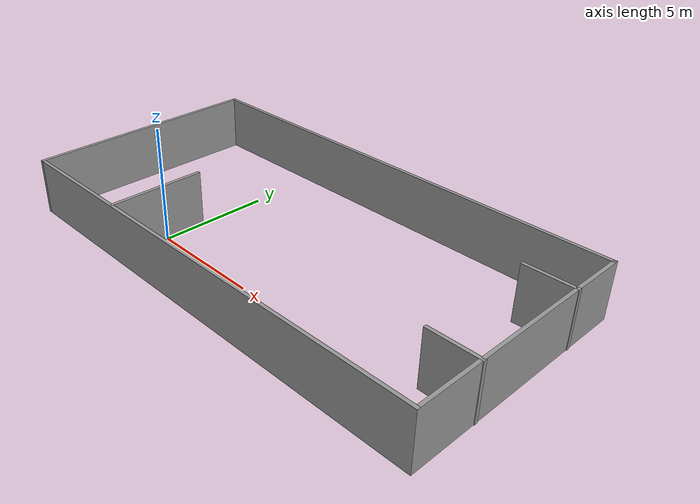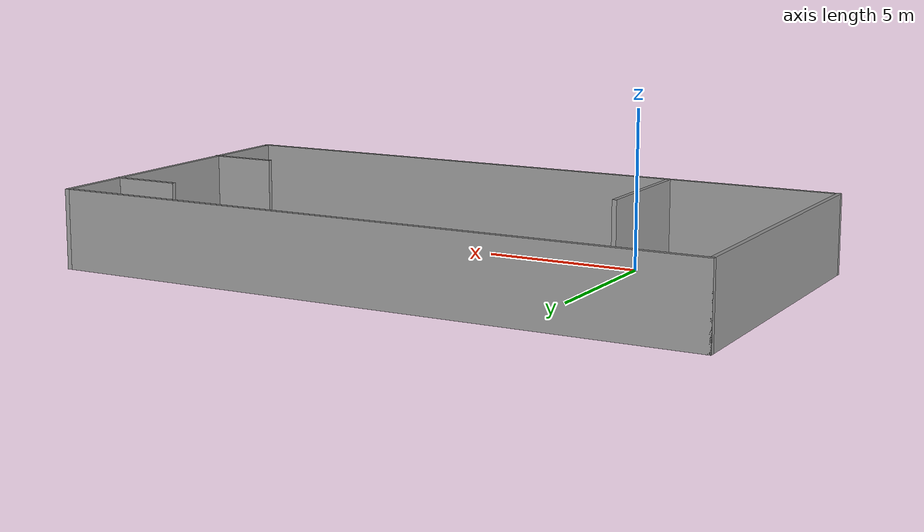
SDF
<?xml version='1.0'?>
<sdf version='1.6'>
  <model name='Room'>
    <pose frame=''>4.87874 2.92 0 0 -0 0</pose>
    <link name='Wall_0'>
      <collision name='Wall_0_Collision'>
        <geometry>
          <box>
            <size>10.75 0.15 2.5</size>
          </box>
        </geometry>
        <pose frame=''>0 0 1.25 0 -0 0</pose>
      </collision>
      <visual name='Wall_0_Visual'>
        <pose frame=''>0 0 1.25 0 -0 0</pose>
        <geometry>
          <box>
            <size>10.75 0.15 2.5</size>
          </box>
        </geometry>
        <material>
          <script>
            <uri>file://media/materials/scripts/gazebo.material</uri>
            <name>Gazebo/Grey</name>
          </script>
          <ambient>1 1 1 1</ambient>
        </material>
        <meta>
          <layer>0</layer>
        </meta>
      </visual>
      <pose frame=''>-10.4387 0 0 0 -0 1.5708</pose>
    </link>
    <link name='Wall_1'>
      <collision name='Wall_1_Collision'>
        <geometry>
          <box>
            <size>21 0.15 2.5</size>
          </box>
        </geometry>
        <pose frame=''>0 0 1.25 0 -0 0</pose>
      </collision>
      <visual name='Wall_1_Visual'>
        <pose frame=''>0 0 1.25 0 -0 0</pose>
        <geometry>
          <box>
            <size>21 0.15 2.5</size>
          </box>
        </geometry>
        <material>
          <script>
            <uri>file://media/materials/scripts/gazebo.material</uri>
            <name>Gazebo/Grey</name>
          </script>
          <ambient>1 1 1 1</ambient>
        </material>
        <meta>
          <layer>0</layer>
        </meta>
      </visual>
      <pose frame=''>-0.013737 5.3 0 0 -0 0</pose>
    </link>
    <link name='Wall_2'>
      <collision name='Wall_2_Collision'>
        <geometry>
          <box>
            <size>10.75 0.15 2.5</size>
          </box>
        </geometry>
        <pose frame=''>0 0 1.25 0 -0 0</pose>
      </collision>
      <visual name='Wall_2_Visual'>
        <pose frame=''>0 0 1.25 0 -0 0</pose>
        <geometry>
          <box>
            <size>10.75 0.15 2.5</size>
          </box>
        </geometry>
        <material>
          <script>
            <uri>file://media/materials/scripts/gazebo.material</uri>
            <name>Gazebo/Grey</name>
          </script>
          <ambient>1 1 1 1</ambient>
        </material>
        <meta>
          <layer>0</layer>
        </meta>
      </visual>
      <pose frame=''>10.4113 0 0 0 -0 -1.5708</pose>
    </link>
    <link name='Wall_3'>
      <collision name='Wall_3_Collision'>
        <geometry>
          <box>
            <size>21 0.15 2.5</size>
          </box>
        </geometry>
        <pose frame=''>0 0 1.25 0 -0 0</pose>
      </collision>
      <visual name='Wall_3_Visual'>
        <pose frame=''>0 0 1.25 0 -0 0</pose>
        <geometry>
          <box>
            <size>21 0.15 2.5</size>
          </box>
        </geometry>
        <material>
          <script>
            <uri>file://media/materials/scripts/gazebo.material</uri>
            <name>Gazebo/Grey</name>
          </script>
          <ambient>1 1 1 1</ambient>
        </material>
        <meta>
          <layer>0</layer>
        </meta>
      </visual>
      <pose frame=''>-0.013737 -5.3 0 0 -0 3.14159</pose>
    </link>
    <link name='Wall_5'>
      <collision name='Wall_5_Collision'>
        <geometry>
          <box>
            <size>4.25 0.15 2.5</size>
          </box>
        </geometry>
        <pose frame=''>0 0 1.25 0 -0 0</pose>
      </collision>
      <visual name='Wall_5_Visual'>
        <pose frame=''>0 0 1.25 0 -0 0</pose>
        <geometry>
          <box>
            <size>4.25 0.15 2.5</size>
          </box>
        </geometry>
        <material>
          <script>
            <uri>file://media/materials/scripts/gazebo.material</uri>
            <name>Gazebo/Grey</name>
          </script>
          <ambient>1 1 1 1</ambient>
        </material>
        <meta>
          <layer>0</layer>
        </meta>
      </visual>
      <pose frame=''>-4.95516 -3.17575 0 0 -0 1.5708</pose>
    </link>
    <link name='Wall_7'>
      <collision name='Wall_7_Collision'>
        <geometry>
          <box>
            <size>2.25 0.15 2.5</size>
          </box>
        </geometry>
        <pose frame=''>0 0 1.25 0 -0 0</pose>
      </collision>
      <visual name='Wall_7_Visual'>
        <pose frame=''>0 0 1.25 0 -0 0</pose>
        <geometry>
          <box>
            <size>2.25 0.15 2.5</size>
          </box>
        </geometry>
        <material>
          <script>
            <uri>file://media/materials/scripts/gazebo.material</uri>
            <name>Gazebo/Grey</name>
          </script>
          <ambient>1 1 1 1</ambient>
        </material>
        <meta>
          <layer>0</layer>
        </meta>
      </visual>
      <pose frame=''>9.38874 -2.35593 0 0 -0 3.14159</pose>
    </link>
    <link name='Wall_9'>
      <collision name='Wall_9_Collision'>
        <geometry>
          <box>
            <size>2.25 0.15 2.5</size>
          </box>
        </geometry>
        <pose frame=''>0 0 1.25 0 -0 0</pose>
      </collision>
      <visual name='Wall_9_Visual'>
        <pose frame=''>0 0 1.25 0 -0 0</pose>
        <geometry>
          <box>
            <size>2.25 0.15 2.5</size>
          </box>
        </geometry>
        <material>
          <script>
            <uri>file://media/materials/scripts/gazebo.material</uri>
            <name>Gazebo/Grey</name>
          </script>
          <ambient>1 1 1 1</ambient>
        </material>
        <meta>
          <layer>0</layer>
        </meta>
      </visual>
      <pose frame=''>9.38874 2.88117 0 0 -0 3.14159</pose>
    </link>
    <static>1</static>
  </model>
</sdf>
